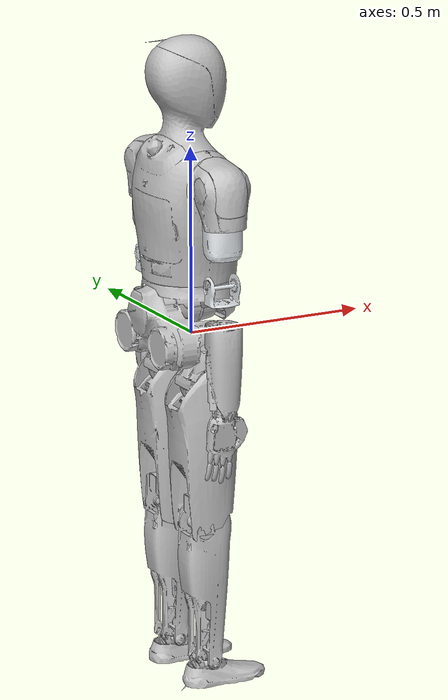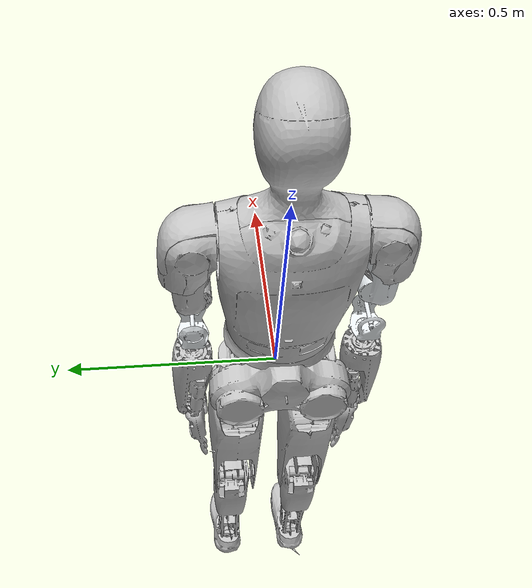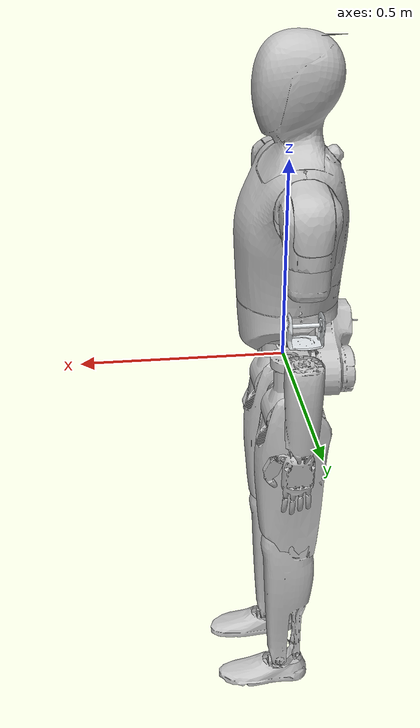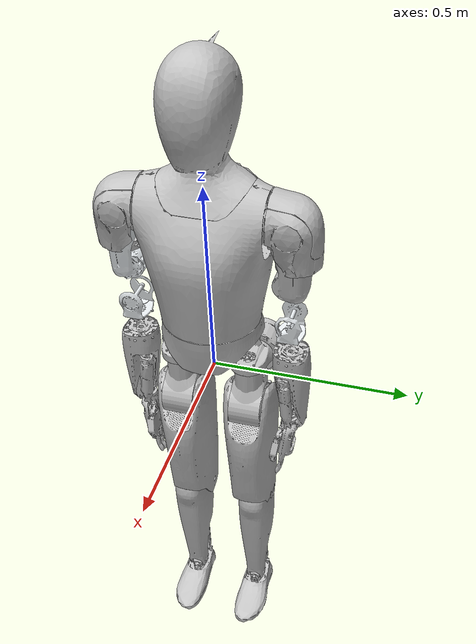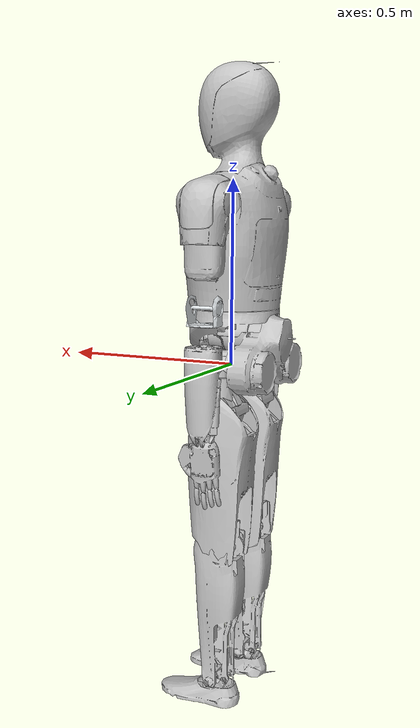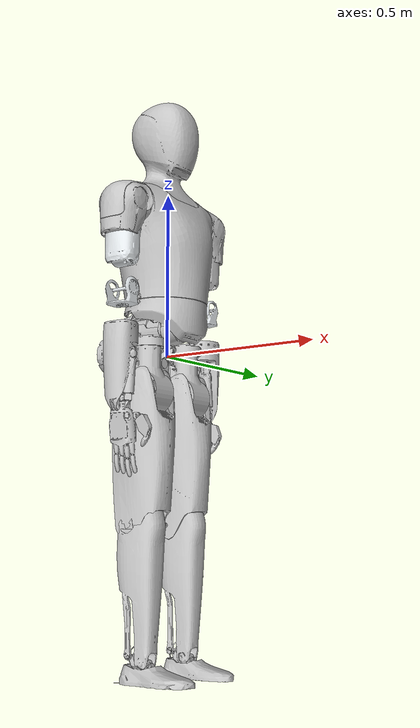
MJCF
<mujoco model="p4_humanoid">
    <compiler angle="radian" meshdir="/home/dreame/dreambot_ws/src/p4_humanoid_description/meshes/" />
    <size njmax="500" nconmax="100" />
    <asset>
        <mesh name="pelvis" file="pelvis.STL" />
        <mesh name="LINK_HIP_ROLL_L" file="LINK_HIP_ROLL_L.STL" />
        <mesh name="LINK_HIP_YAW_L" file="LINK_HIP_YAW_L.STL" />
        <mesh name="LINK_HIP_PITCH_L" file="LINK_HIP_PITCH_L.STL" />
        <mesh name="LINK_KNEE_PITCH_L" file="LINK_KNEE_PITCH_L.STL" />
        <mesh name="LINK_ANKLE_PITCH_L" file="LINK_ANKLE_PITCH_L.STL" />
        <mesh name="LINK_ANKLE_ROLL_L" file="LINK_ANKLE_ROLL_L.STL" />
        <mesh name="LINK_HIP_ROLL_R" file="LINK_HIP_ROLL_R.STL" />
        <mesh name="LINK_HIP_YAW_R" file="LINK_HIP_YAW_R.STL" />
        <mesh name="LINK_HIP_PITCH_R" file="LINK_HIP_PITCH_R.STL" />
        <mesh name="LINK_KNEE_PITCH_R" file="LINK_KNEE_PITCH_R.STL" />
        <mesh name="LINK_ANKLE_PITCH_R" file="LINK_ANKLE_PITCH_R.STL" />
        <mesh name="LINK_ANKLE_ROLL_R" file="LINK_ANKLE_ROLL_R.STL" />
        <mesh name="link_wr" file="link_wr.STL" />
        <mesh name="link_wy" file="link_wy.STL" />
        <mesh name="link_hy" file="link_hy.STL" />
        <mesh name="link_hp" file="link_hp.STL" />
        <mesh name="link_la1" file="link_la1.STL" />
        <mesh name="link_la2" file="link_la2.STL" />
        <mesh name="link_la3" file="link_la3.STL" />
        <mesh name="link_la4" file="link_la4.STL" />
        <mesh name="link_la5" file="link_la5.STL" />
        <mesh name="link_la6" file="link_la6.STL" />
        <mesh name="link_la7" file="link_la7.STL" />
        <mesh name="link_ra1" file="link_ra1.STL" />
        <mesh name="link_ra2" file="link_ra2.STL" />
        <mesh name="link_ra3" file="link_ra3.STL" />
        <mesh name="link_ra4" file="link_ra4.STL" />
        <mesh name="link_ra5" file="link_ra5.STL" />
        <mesh name="link_ra6" file="link_ra6.STL" />
        <mesh name="link_ra7" file="link_ra7.STL" />
    </asset>
    <worldbody>
        <geom type="mesh" contype="0" conaffinity="0" group="1" rgba="0.75294 0.75294 0.75294 1" mesh="pelvis" />
        <geom type="mesh" rgba="0.75294 0.75294 0.75294 1" mesh="pelvis" />
        <geom pos="-0.005 0 0.085" type="mesh" contype="0" conaffinity="0" group="1" rgba="0.75294 0.75294 0.75294 1" mesh="link_wr" />
        <geom pos="-0.005 0 0.085" type="mesh" rgba="0.75294 0.75294 0.75294 1" mesh="link_wr" />
        <geom pos="-0.005 0 0.085" type="mesh" contype="0" conaffinity="0" group="1" rgba="0.75294 0.75294 0.75294 1" mesh="link_wy" />
        <geom pos="-0.005 0 0.085" type="mesh" rgba="0.75294 0.75294 0.75294 1" mesh="link_wy" />
        <body name="LINK_HIP_ROLL_L" pos="0 0.0915 0">
            <inertial pos="-0.033517 0 0.02254" quat="0 0.912746 0 0.408528" mass="0.45354" diaginertia="0.0010204 0.00079579 0.000611692" />
            <joint name="JOINT_HIP_ROLL_L" pos="0 0 0" axis="1 0 0" limited="true" range="-0.3491 0.5236" />
            <geom type="mesh" contype="0" conaffinity="0" group="1" rgba="0.75294 0.75294 0.75294 1" mesh="LINK_HIP_ROLL_L" />
            <geom type="mesh" rgba="0.75294 0.75294 0.75294 1" mesh="LINK_HIP_ROLL_L" />
            <body name="LINK_HIP_YAW_L" pos="0 0 0">
                <inertial pos="-0.00010073 0.0040883 -0.085009" quat="0.710244 -0.0135012 0.0138695 0.703689" mass="4.0812" diaginertia="0.0179517 0.0165509 0.00554702" />
                <joint name="JOINT_HIP_YAW_L" pos="0 0 0" axis="0 0 1" limited="true" range="-0.2618 0.5236" />
                <geom type="mesh" contype="0" conaffinity="0" group="1" rgba="0.75294 0.75294 0.75294 1" mesh="LINK_HIP_YAW_L" />
                <geom type="mesh" rgba="0.75294 0.75294 0.75294 1" mesh="LINK_HIP_YAW_L" />
                <body name="LINK_HIP_PITCH_L" pos="0 0 -0.115">
                    <inertial pos="-0.0033564 -0.00072337 -0.1551" quat="0.673797 -0.0324523 0.000572308 0.738203" mass="6.3792" diaginertia="0.0676521 0.0653701 0.0214688" />
                    <joint name="JOINT_HIP_PITCH_L" pos="0 0 0" axis="0 1 0" limited="true" range="-2.0944 0.8727" />
                    <geom type="mesh" contype="0" conaffinity="0" group="1" rgba="0.75294 0.75294 0.75294 1" mesh="LINK_HIP_PITCH_L" />
                    <geom type="mesh" rgba="0.75294 0.75294 0.75294 1" mesh="LINK_HIP_PITCH_L" />
                    <body name="LINK_KNEE_PITCH_L" pos="-0.03294 0.0081105 -0.38424">
                        <inertial pos="0.038665 0.0010674 -0.13511" quat="0.716393 0.00682119 -0.00262532 0.697658" mass="3.4986" diaginertia="0.042983 0.0428151 0.00507451" />
                        <joint name="JOINT_KNEE_PITCH_L" pos="0 0 0" axis="0 1 0" limited="true" range="0 2.618" />
                        <geom type="mesh" contype="0" conaffinity="0" group="1" rgba="0.75294 0.75294 0.75294 1" mesh="LINK_KNEE_PITCH_L" />
                        <geom type="mesh" rgba="0.75294 0.75294 0.75294 1" mesh="LINK_KNEE_PITCH_L" />
                        <body name="LINK_ANKLE_PITCH_L" pos="0.04 0 -0.39">
                            <inertial pos="0.00015149 0 -0.0065498" quat="0.707052 0.707052 0.00883125 -0.00883125" mass="0.087977" diaginertia="1.91805e-05 1.83795e-05 1.221e-05" />
                            <joint name="JOINT_ANKLE_PITCH_L" pos="0 0 0" axis="0 1 0" limited="true" range="-1.309 0.5236" />
                            <geom type="mesh" contype="0" conaffinity="0" group="1" rgba="0.75294 0.75294 0.75294 1" mesh="LINK_ANKLE_PITCH_L" />
                            <geom type="mesh" rgba="0.75294 0.75294 0.75294 1" mesh="LINK_ANKLE_PITCH_L" />
                            <body name="LINK_ANKLE_ROLL_L" pos="0 0 -0.01">
                                <inertial pos="0.019351 0.00097181 -0.028474" quat="-0.0196618 0.678285 -0.0161665 0.734358" mass="0.71569" diaginertia="0.00242979 0.00229016 0.000453833" />
                                <joint name="JOINT_ANKLE_ROLL_L" pos="0 0 0" axis="1 0 0" limited="true" range="-0.3491 0.3491" />
                                <geom type="mesh" contype="0" conaffinity="0" group="1" rgba="0.75294 0.75294 0.75294 1" mesh="LINK_ANKLE_ROLL_L" />
                                <geom type="mesh" rgba="0.75294 0.75294 0.75294 1" mesh="LINK_ANKLE_ROLL_L" />
                            </body>
                        </body>
                    </body>
                </body>
            </body>
        </body>
        <body name="LINK_HIP_ROLL_R" pos="0 -0.0915 0">
            <inertial pos="-0.033517 0 0.02254" quat="0 0.912746 0 0.408528" mass="0.45354" diaginertia="0.0010204 0.00079579 0.000611692" />
            <joint name="JOINT_HIP_ROLL_R" pos="0 0 0" axis="1 0 0" limited="true" range="-0.5236 0.3491" />
            <geom type="mesh" contype="0" conaffinity="0" group="1" rgba="0.75294 0.75294 0.75294 1" mesh="LINK_HIP_ROLL_R" />
            <geom type="mesh" rgba="0.75294 0.75294 0.75294 1" mesh="LINK_HIP_ROLL_R" />
            <body name="LINK_HIP_YAW_R" pos="0 0 0">
                <inertial pos="-0.00010021 -0.0041095 -0.084657" quat="0.703904 0.0136526 -0.0133655 0.710038" mass="4.1012" diaginertia="0.0180704 0.0166669 0.00555774" />
                <joint name="JOINT_HIP_YAW_R" pos="0 0 0" axis="0 0 1" limited="true" range="-0.5236 0.2618" />
                <geom type="mesh" contype="0" conaffinity="0" group="1" rgba="0.75294 0.75294 0.75294 1" mesh="LINK_HIP_YAW_R" />
                <geom type="mesh" rgba="0.75294 0.75294 0.75294 1" mesh="LINK_HIP_YAW_R" />
                <body name="LINK_HIP_PITCH_R" pos="0 0 -0.115">
                    <inertial pos="-0.0033348 0.00072433 -0.15507" quat="0.738837 0.000749711 -0.0323914 0.673105" mass="6.3791" diaginertia="0.0676244 0.065337 0.0214725" />
                    <joint name="JOINT_HIP_PITCH_R" pos="0 0 0" axis="0 1 0" limited="true" range="-2.0944 0.8727" />
                    <geom type="mesh" contype="0" conaffinity="0" group="1" rgba="0.75294 0.75294 0.75294 1" mesh="LINK_HIP_PITCH_R" />
                    <geom type="mesh" rgba="0.75294 0.75294 0.75294 1" mesh="LINK_HIP_PITCH_R" />
                    <body name="LINK_KNEE_PITCH_R" pos="-0.032956 -0.00811 -0.38424">
                        <inertial pos="0.0387 -0.0013666 -0.13495" quat="0.754633 -0.00728045 0.0106442 0.656021" mass="3.4959" diaginertia="0.042793 0.0426111 0.00504069" />
                        <joint name="JOINT_KNEE_PITCH_R" pos="0 0 0" axis="0 1 0" limited="true" range="0 2.618" />
                        <geom type="mesh" contype="0" conaffinity="0" group="1" rgba="0.75294 0.75294 0.75294 1" mesh="LINK_KNEE_PITCH_R" />
                        <geom type="mesh" rgba="0.75294 0.75294 0.75294 1" mesh="LINK_KNEE_PITCH_R" />
                        <body name="LINK_ANKLE_PITCH_R" pos="0.039984 0 -0.39">
                            <inertial pos="-6.233e-05 0 -0.0065512" quat="0.707107 0.707107 0 0" mass="0.087977" diaginertia="1.918e-05 1.838e-05 1.221e-05" />
                            <joint name="JOINT_ANKLE_PITCH_R" pos="0 0 0" axis="0 1 0" limited="true" range="-1.309 0.5236" />
                            <geom type="mesh" contype="0" conaffinity="0" group="1" rgba="0.75294 0.75294 0.75294 1" mesh="LINK_ANKLE_PITCH_R" />
                            <geom type="mesh" rgba="0.75294 0.75294 0.75294 1" mesh="LINK_ANKLE_PITCH_R" />
                            <body name="LINK_ANKLE_ROLL_R" pos="0 0 -0.01">
                                <inertial pos="0.018066 -0.0011109 -0.02909" quat="0.0182066 0.666272 0.0156508 0.745322" mass="0.7169" diaginertia="0.00243157 0.00229138 0.000454509" />
                                <joint name="JOINT_ANKLE_ROLL_R" pos="0 0 0" axis="1 0 0" limited="true" range="-0.3491 0.3491" />
                                <geom type="mesh" contype="0" conaffinity="0" group="1" rgba="0.75294 0.75294 0.75294 1" mesh="LINK_ANKLE_ROLL_R" />
                                <geom type="mesh" rgba="0.75294 0.75294 0.75294 1" mesh="LINK_ANKLE_ROLL_R" />
                            </body>
                        </body>
                    </body>
                </body>
            </body>
        </body>
        <body name="link_hy" pos="-0.0195 0 0.5864">
            <inertial pos="0.00045536 0.00070489 -0.0098532" quat="0.69213 0.0283207 0.0230721 0.720848" mass="0.74408" diaginertia="0.00104696 0.00102265 0.000515555" />
            <joint name="joint_hy" pos="0 0 0" axis="0 0 1" limited="true" range="-0.5236 0.5236" />
            <geom type="mesh" contype="0" conaffinity="0" group="1" rgba="0.75294 0.75294 0.75294 1" mesh="link_hy" />
            <geom type="mesh" rgba="0.75294 0.75294 0.75294 1" mesh="link_hy" />
            <body name="link_hp" pos="0 0 0">
                <inertial pos="0.018094 -0.00034115 0.074798" quat="0.706314 0.0987949 0.121685 0.690328" mass="1.7161" diaginertia="0.00995168 0.00926712 0.0065293" />
                <joint name="joint_hp" pos="0 0 0" axis="0 1 0" limited="true" range="-0.3491 0.1745" />
                <geom type="mesh" contype="0" conaffinity="0" group="1" rgba="0.75294 0.75294 0.75294 1" mesh="link_hp" />
                <geom type="mesh" rgba="0.75294 0.75294 0.75294 1" mesh="link_hp" />
            </body>
        </body>
        <body name="link_la1" pos="-0.0129 0.199 0.432">
            <inertial pos="0.0077237 -0.0043281 -9.294e-05" quat="0.137165 0.681535 -0.0594684 0.716352" mass="1.1622" diaginertia="0.00148885 0.00135043 0.00121572" />
            <joint name="joint_la1" pos="0 0 0" axis="0 1 0" limited="true" range="-2.7576 2.7576" />
            <geom type="mesh" contype="0" conaffinity="0" group="1" rgba="0.75294 0.75294 0.75294 1" mesh="link_la1" />
            <geom type="mesh" rgba="0.75294 0.75294 0.75294 1" mesh="link_la1" />
            <body name="link_la2" pos="0 0 0">
                <inertial pos="0.00092134 7.016e-05 -0.091409" quat="0.699155 -0.0636231 -0.0649094 0.709169" mass="0.90457" diaginertia="0.00163965 0.00141047 0.000964257" />
                <joint name="joint_la2" pos="0 0 0" axis="1 0 0" limited="true" range="-0.2618 2.5656" />
                <geom type="mesh" contype="0" conaffinity="0" group="1" rgba="0.75294 0.75294 0.75294 1" mesh="link_la2" />
                <geom type="mesh" rgba="0.75294 0.75294 0.75294 1" mesh="link_la2" />
                <body name="link_la3" pos="-0.00025 0 0">
                    <inertial pos="0.0086127 0.0021377 -0.23173" quat="0.993747 -0.0095734 0.0559332 -0.0961648" mass="0.93018" diaginertia="0.00275887 0.00263111 0.000702653" />
                    <joint name="joint_la3" pos="0 0 0" axis="0 0 1" limited="true" range="-2.6354 2.6354" />
                    <geom type="mesh" contype="0" conaffinity="0" group="1" rgba="0.75294 0.75294 0.75294 1" mesh="link_la3" />
                    <geom type="mesh" rgba="0.75294 0.75294 0.75294 1" mesh="link_la3" />
                    <body name="link_la4" pos="0 0 -0.2595">
                        <inertial pos="0.0088434 3.716e-05 -0.023669" quat="0.374594 0.598489 0.604173 0.369413" mass="0.16009" diaginertia="0.000220492 0.000208761 0.000111107" />
                        <joint name="joint_la4" pos="0 0 0" axis="1 0 0" limited="true" range="-2.2166 0.2443" />
                        <geom type="mesh" contype="0" conaffinity="0" group="1" rgba="0.89804 0.91765 0.92941 1" mesh="link_la4" />
                        <geom type="mesh" rgba="0.89804 0.91765 0.92941 1" mesh="link_la4" />
                        <body name="link_la5" pos="0 0 -0.0501">
                            <inertial pos="0.00047941 -0.00082489 -0.095559" quat="0.701498 -0.00302027 0.00600256 0.712639" mass="1.8234" diaginertia="0.0103415 0.0102141 0.0014747" />
                            <joint name="joint_la5" pos="0 0 0" axis="0 0 1" limited="true" range="-2.9147 2.9147" />
                            <geom type="mesh" contype="0" conaffinity="0" group="1" rgba="0.75294 0.75294 0.75294 1" mesh="link_la5" />
                            <geom type="mesh" rgba="0.75294 0.75294 0.75294 1" mesh="link_la5" />
                            <body name="link_la6" pos="0 0.024 -0.2489">
                                <inertial pos="0 -0.017559 0.00015073" quat="0.498012 0.50198 -0.50198 0.498012" mass="0.021475" diaginertia="3.33016e-06 3.14e-06 8.09841e-07" />
                                <joint name="joint_la6" pos="0 0 0" axis="1 0 0" limited="true" range="-0.9948 0.9948" />
                                <geom type="mesh" contype="0" conaffinity="0" group="1" rgba="0.75294 0.75294 0.75294 1" mesh="link_la6" />
                                <geom type="mesh" rgba="0.75294 0.75294 0.75294 1" mesh="link_la6" />
                                <body name="link_la7" pos="0 0 0">
                                    <inertial pos="0.005857 -0.024313 -0.094881" quat="0.587624 -0.0277657 0.0128993 0.808554" mass="0.54629" diaginertia="0.00155137 0.00111869 0.000559143" />
                                    <joint name="joint_la7" pos="0 0 0" axis="0 1 0" limited="true" range="-0.4538 0.4538" />
                                    <geom type="mesh" contype="0" conaffinity="0" group="1" rgba="0.75294 0.75294 0.75294 1" mesh="link_la7" />
                                    <geom type="mesh" rgba="0.75294 0.75294 0.75294 1" mesh="link_la7" />
                                </body>
                            </body>
                        </body>
                    </body>
                </body>
            </body>
        </body>
        <body name="link_ra1" pos="-0.0129 -0.199 0.432">
            <inertial pos="0.0077276 0.0043398 -8.977e-05" quat="-0.141459 0.71935 0.0444871 0.678636" mass="1.1622" diaginertia="0.00148959 0.00134904 0.00121637" />
            <joint name="joint_ra1" pos="0 0 0" axis="0 1 0" limited="true" range="-2.7576 2.7576" />
            <geom type="mesh" contype="0" conaffinity="0" group="1" rgba="0.75294 0.75294 0.75294 1" mesh="link_ra1" />
            <geom type="mesh" rgba="0.75294 0.75294 0.75294 1" mesh="link_ra1" />
            <body name="link_ra2" pos="0 0 0">
                <inertial pos="0.00092472 -0.00010647 -0.091417" quat="0.707558 -0.0651407 -0.0625455 0.700861" mass="0.90448" diaginertia="0.00164473 0.00141585 0.000965239" />
                <joint name="joint_ra2" pos="0 0 0" axis="1 0 0" limited="true" range="-2.5656 0.2618" />
                <geom type="mesh" contype="0" conaffinity="0" group="1" rgba="0.75294 0.75294 0.75294 1" mesh="link_ra2" />
                <geom type="mesh" rgba="0.75294 0.75294 0.75294 1" mesh="link_ra2" />
                <body name="link_ra3" pos="-0.00025 0 0">
                    <inertial pos="0.0086139 -0.0022118 -0.23173" quat="0.993284 0.0106777 0.0559091 0.100734" mass="0.93017" diaginertia="0.00275997 0.0026368 0.000708267" />
                    <joint name="joint_ra3" pos="0 0 0" axis="0 0 1" limited="true" range="-2.6354 2.6354" />
                    <geom type="mesh" contype="0" conaffinity="0" group="1" rgba="0.89804 0.91765 0.92941 1" mesh="link_ra3" />
                    <geom type="mesh" rgba="0.89804 0.91765 0.92941 1" mesh="link_ra3" />
                    <body name="link_ra4" pos="0 0 -0.2595">
                        <inertial pos="0.0088434 3.716e-05 -0.023669" quat="0.374594 0.598489 0.604173 0.369413" mass="0.16009" diaginertia="0.000220492 0.000208761 0.000111107" />
                        <joint name="joint_ra4" pos="0 0 0" axis="1 0 0" limited="true" range="-0.2443 2.2166" />
                        <geom type="mesh" contype="0" conaffinity="0" group="1" rgba="0.89804 0.91765 0.92941 1" mesh="link_ra4" />
                        <geom type="mesh" rgba="0.89804 0.91765 0.92941 1" mesh="link_ra4" />
                        <body name="link_ra5" pos="0 0 -0.0501">
                            <inertial pos="-0.00047941 0.00082489 -0.095559" quat="0.701498 0.00302027 -0.00600256 0.712639" mass="1.8234" diaginertia="0.0103415 0.0102141 0.0014747" />
                            <joint name="joint_ra5" pos="0 0 0" axis="0 0 1" limited="true" range="-2.9147 2.9147" />
                            <geom type="mesh" contype="0" conaffinity="0" group="1" rgba="0.75294 0.75294 0.75294 1" mesh="link_ra5" />
                            <geom type="mesh" rgba="0.75294 0.75294 0.75294 1" mesh="link_ra5" />
                            <body name="link_ra6" pos="0 -0.024 -0.2489">
                                <inertial pos="0 0.017559 0.00015073" quat="0.50198 0.498012 -0.498012 0.50198" mass="0.021475" diaginertia="3.33016e-06 3.14e-06 8.09841e-07" />
                                <joint name="joint_ra6" pos="0 0 0" axis="1 0 0" limited="true" range="-0.9948 0.9948" />
                                <geom type="mesh" contype="0" conaffinity="0" group="1" rgba="0.75294 0.75294 0.75294 1" mesh="link_ra6" />
                                <geom type="mesh" rgba="0.75294 0.75294 0.75294 1" mesh="link_ra6" />
                                <body name="link_ra7" pos="0 0 0">
                                    <inertial pos="0.0058056 0.02443 -0.09525" quat="0.813966 0.0146768 -0.0266665 0.580115" mass="0.55629" diaginertia="0.00157872 0.00113699 0.000570439" />
                                    <joint name="joint_ra7" pos="0 0 0" axis="0 1 0" limited="true" range="-0.4538 0.4538" />
                                    <geom type="mesh" contype="0" conaffinity="0" group="1" rgba="0.75294 0.75294 0.75294 1" mesh="link_ra7" />
                                    <geom type="mesh" rgba="0.75294 0.75294 0.75294 1" mesh="link_ra7" />
                                </body>
                            </body>
                        </body>
                    </body>
                </body>
            </body>
        </body>
    </worldbody>
</mujoco>
